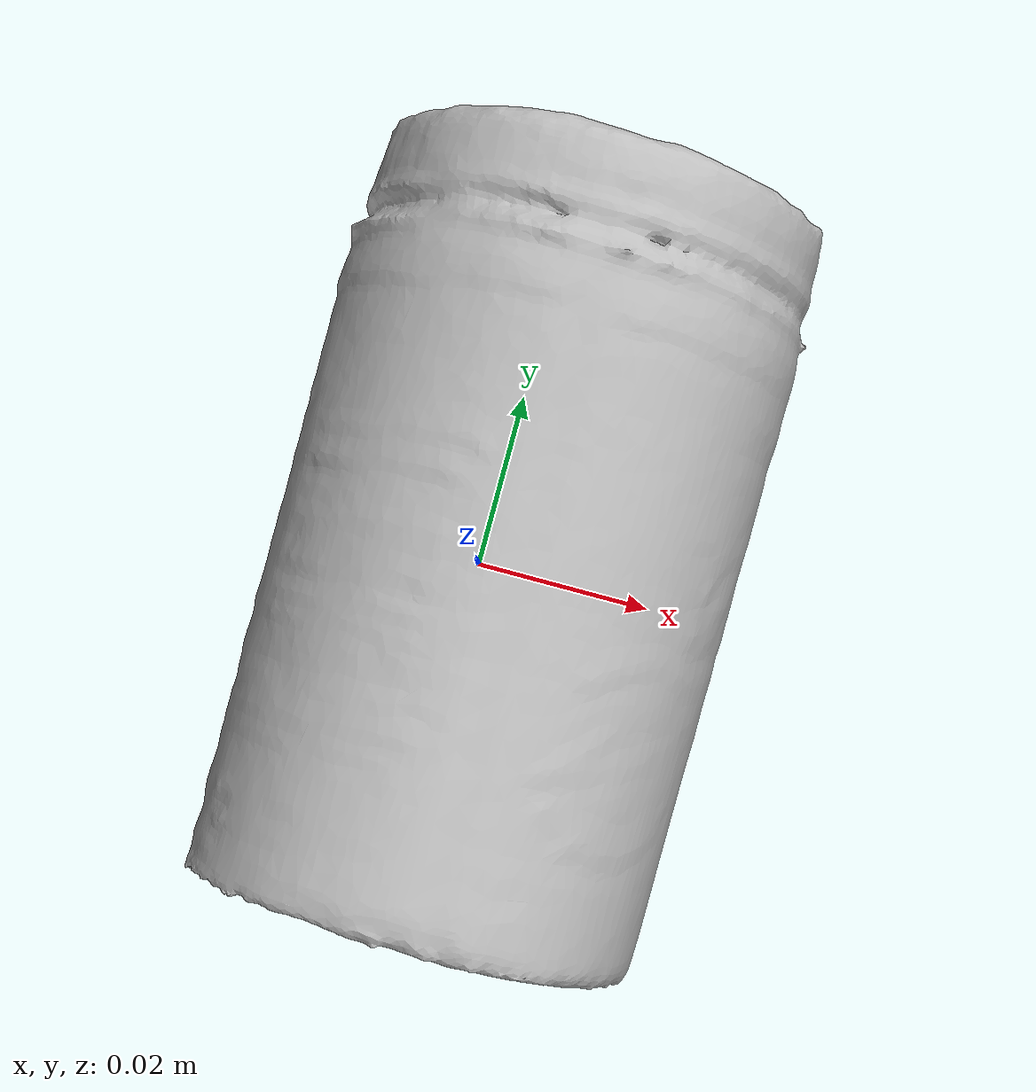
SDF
<?xml version='1.0'?>
<sdf version="1.4">
  <model name="BakingSoda">
    <static>false</static>
    <link name="link">
      <inertial>
        <pose>0.0027099565171531045 0.0027755811523128998 -0.0015889658955983365 1.8832984986874663 -1.4736408466521835 -0.31297684662091896</pose>
        <mass>0.01938647788283832</mass>
        <inertia>
          <ixx>1.5801446830785785e-05</ixx>
          <ixy>-6.930737337012726e-22</ixy>
          <ixz>8.080019162314613e-22</ixz>
          <iyy>1.574775886232238e-05</iyy>
          <iyz>1.2656285092204117e-21</iyz>
          <izz>6.76449049226176e-06</izz>
        </inertia>
      </inertial>
      <collision name="collision">
        <geometry>
          <mesh>
            <!-- Use a downsampled mesh for collisions -->
            <uri>model:///BakingSoda/BakingSoda_250_collision.obj</uri>
	        </mesh>
        </geometry>
        <surface>
      </surface>
      </collision>
      <visual name="visual">
        <geometry>
          <mesh>
            <uri>model:///BakingSoda/BakingSoda_25k_tex.obj</uri>
	        </mesh>
        </geometry>
        <material>
          <script>
            <uri>model:///BakingSoda/BakingSoda.material</uri>
            <name>BakingSoda</name>
          </script>
        </material>
      </visual>
    </link>
  </model>
</sdf>
